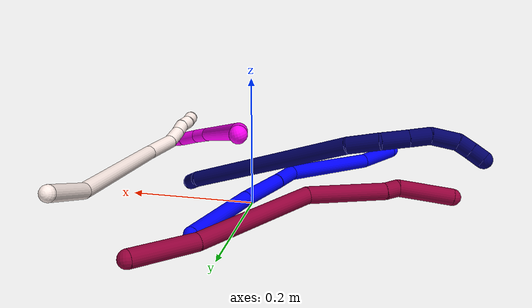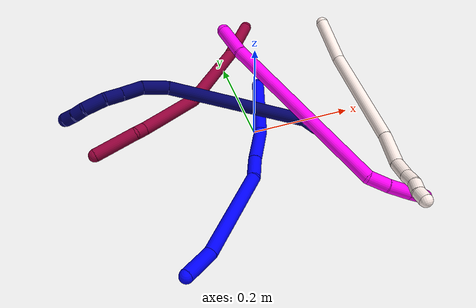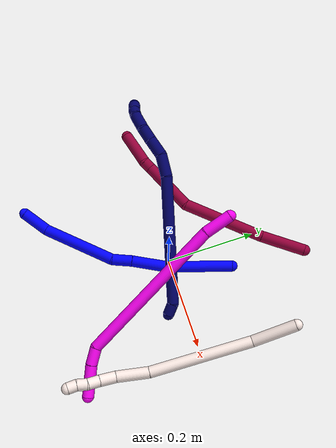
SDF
<sdf version="1.7">
 <world name="default">
  <model name="photoneo_s_sensor">
   <static>1</static>
   <pose>0 0 2 1.57079 1.57079 3.14159</pose>
   <link name="link">
    <inertial><mass>0.1</mass></inertial>
    <sensor name="sensor" type="depth">
     <update_rate>30</update_rate>
     <camera>
      <horizontal_fov>1.22</horizontal_fov>
      <image><width>1920</width><height>1200</height><format>B8G8R8</format></image>
      <clip><near>0.1</near><far>4</far></clip>
      <depth_camera><output>points</output></depth_camera>
     </camera>
     <plugin name="camera_plugin" filename="libgazebo_ros_depth_camera.so">
      <baseline>0.2</baseline>
      <alwaysOn>1</alwaysOn>
      <updateRate>0.0</updateRate>
      <cameraName>camera_ir</cameraName>
      <imageTopicName>/camera/color/image_raw</imageTopicName>
      <cameraInfoTopicName>/camera/color/camera_info</cameraInfoTopicName>
      <depthImageTopicName>/camera/depth/image_raw</depthImageTopicName>
      <depthImageCameraInfoTopicName>/camera/depth/camera_info</depthImageCameraInfoTopicName>
      <pointCloudTopicName>/camera/depth/points</pointCloudTopicName>
      <frameName>fr_optical</frameName>
      <pointCloudCutoff>0.1</pointCloudCutoff>
      <pointCloudCutoffMax>2.0</pointCloudCutoffMax>
      <distortionK1>0</distortionK1>
      <distortionK2>0</distortionK2>
      <distortionK3>0</distortionK3>
      <distortionT1>0</distortionT1>
      <distortionT2>0</distortionT2>
      <CxPrime>0</CxPrime>
      <Cx>0</Cx>
      <Cy>0</Cy>
      <focalLength>0</focalLength>
      <hackBaseline>0</hackBaseline>
     </plugin>
    </sensor>
   </link>
  </model>
  <model name="bin">
   <static>1</static>
   <link name="bottom">
    <collision name="collision-bottom">
     <pose>0 0 -0.01 0 -0 0</pose>
     <geometry><box><size>0.8 0.6 0.02</size></box></geometry>
     <surface>
      <friction><ode><mu>100</mu><mu2>100</mu2></ode></friction>
      <contact><collide_bitmask>65535</collide_bitmask></contact>
     </surface>
    </collision>
   </link>
   <link name="west_wall">
    <collision name="collision-west_wall">
     <pose>-0.41 0 0.1 0 -0 0</pose>
     <geometry><box><size>0.02 0.6 0.2</size></box></geometry>
     <surface>
      <friction><ode><mu>100</mu><mu2>100</mu2></ode></friction>
      <contact><collide_bitmask>65535</collide_bitmask></contact>
     </surface>
    </collision>
   </link>
   <link name="east_wall">
    <collision name="collision-east_wall">
     <pose>0.41 0 0.1 0 -0 0</pose>
     <geometry><box><size>0.02 0.6 0.2</size></box></geometry>
     <surface>
      <friction><ode><mu>100</mu><mu2>100</mu2></ode></friction>
      <contact><collide_bitmask>65535</collide_bitmask></contact>
     </surface>
    </collision>
   </link>
   <link name="south_wall">
    <collision name="collision-south_wall">
     <pose>0 -0.31 0.1 0 -0 0</pose>
     <geometry><box><size>0.8 0.02 0.2</size></box></geometry>
     <surface>
      <friction><ode><mu>100</mu><mu2>100</mu2></ode></friction>
      <contact><collide_bitmask>65535</collide_bitmask></contact>
     </surface>
    </collision>
   </link>
   <link name="north_wall">
    <collision name="collision-north_wall">
     <pose>0 0.31 0.1 0 -0 0</pose>
     <geometry><box><size>0.8 0.02 0.2</size></box></geometry>
     <surface>
      <friction><ode><mu>100</mu><mu2>100</mu2></ode></friction>
      <contact><collide_bitmask>65535</collide_bitmask></contact>
     </surface>
    </collision>
   </link>
  </model>
  <model name="1">
   <static>0</static>
   <link name="1">
    <collision name="collision-cylinder-e_1_1_4">
     <pose>-0.0206 -0.069524 0.003262 1.52391 -0.28776 -0.274745</pose>
     <geometry><cylinder><radius>0.0125</radius><length>0.145169</length></cylinder></geometry>
     <surface>
      <friction><ode><mu>1.16</mu><mu2>1.16</mu2><slip1>0</slip1><slip2>0</slip2></ode></friction>
      <contact><ode><kp>1e+06</kp><kd>1</kd><max_vel>0</max_vel><min_depth>0.001</min_depth></ode></contact>
     </surface>
    </collision>
    <visual name="visual-cylinder-e_1_1_4">
     <pose>-0.0206 -0.069524 0.003262 1.52391 -0.28776 -0.274745</pose>
     <geometry><cylinder><radius>0.0125</radius><length>0.145169</length></cylinder></geometry>
     <material><ambient>0 0 1 1</ambient></material>
    </visual>
    <collision name="collision-cylinder-e_2_4_5">
     <pose>-0.059053 -0.174925 0.009896 1.47709 -0.459981 -0.420033</pose>
     <geometry><cylinder><radius>0.0125</radius><length>0.080432</length></cylinder></geometry>
     <surface>
      <friction><ode><mu>1.16</mu><mu2>1.16</mu2><slip1>0</slip1><slip2>0</slip2></ode></friction>
      <contact><ode><kp>1e+06</kp><kd>1</kd><max_vel>0</max_vel><min_depth>0.001</min_depth></ode></contact>
     </surface>
    </collision>
    <visual name="visual-cylinder-e_2_4_5">
     <pose>-0.059053 -0.174925 0.009896 1.47709 -0.459981 -0.420033</pose>
     <geometry><cylinder><radius>0.0125</radius><length>0.080432</length></cylinder></geometry>
     <material><ambient>0 0 1 1</ambient></material>
    </visual>
    <collision name="collision-cylinder-e_3_5_6">
     <pose>-0.085 -0.231479 0.014678 1.50268 -0.372326 -0.348301</pose>
     <geometry><cylinder><radius>0.0125</radius><length>0.044497</length></cylinder></geometry>
     <surface>
      <friction><ode><mu>1.16</mu><mu2>1.16</mu2><slip1>0</slip1><slip2>0</slip2></ode></friction>
      <contact><ode><kp>1e+06</kp><kd>1</kd><max_vel>0</max_vel><min_depth>0.001</min_depth></ode></contact>
     </surface>
    </collision>
    <visual name="visual-cylinder-e_3_5_6">
     <pose>-0.085 -0.231479 0.014678 1.50268 -0.372326 -0.348301</pose>
     <geometry><cylinder><radius>0.0125</radius><length>0.044497</length></cylinder></geometry>
     <material><ambient>0 0 1 1</ambient></material>
    </visual>
    <collision name="collision-cylinder-e_4_6_7">
     <pose>-0.149591 -0.31415 0.00971 1.67333 -0.736419 -0.808041</pose>
     <geometry><cylinder><radius>0.0125</radius><length>0.16824</length></cylinder></geometry>
     <surface>
      <friction><ode><mu>1.16</mu><mu2>1.16</mu2><slip1>0</slip1><slip2>0</slip2></ode></friction>
      <contact><ode><kp>1e+06</kp><kd>1</kd><max_vel>0</max_vel><min_depth>0.001</min_depth></ode></contact>
     </surface>
    </collision>
    <visual name="visual-cylinder-e_4_6_7">
     <pose>-0.149591 -0.31415 0.00971 1.67333 -0.736419 -0.808041</pose>
     <geometry><cylinder><radius>0.0125</radius><length>0.16824</length></cylinder></geometry>
     <material><ambient>0 0 1 1</ambient></material>
    </visual>
    <collision name="collision-cylinder-e_5_7_2">
     <pose>-0.230491 -0.394242 0.00859 1.28795 -0.913177 -0.706594</pose>
     <geometry><cylinder><radius>0.0125</radius><length>0.061663</length></cylinder></geometry>
     <surface>
      <friction><ode><mu>1.16</mu><mu2>1.16</mu2><slip1>0</slip1><slip2>0</slip2></ode></friction>
      <contact><ode><kp>1e+06</kp><kd>1</kd><max_vel>0</max_vel><min_depth>0.001</min_depth></ode></contact>
     </surface>
    </collision>
    <visual name="visual-cylinder-e_5_7_2">
     <pose>-0.230491 -0.394242 0.00859 1.28795 -0.913177 -0.706594</pose>
     <geometry><cylinder><radius>0.0125</radius><length>0.061663</length></cylinder></geometry>
     <material><ambient>0 0 1 1</ambient></material>
    </visual>
    <collision name="collision-sphere-2">
     <pose>-0.254892 -0.412338 0.013849 0 -0 0</pose>
     <geometry><sphere><radius>0.0125</radius></sphere></geometry>
     <surface>
      <friction><ode><mu>1.16</mu><mu2>1.16</mu2><slip1>0</slip1><slip2>0</slip2></ode></friction>
      <contact><ode><kp>1e+06</kp><kd>1</kd><max_vel>0</max_vel><min_depth>0.001</min_depth></ode></contact>
     </surface>
    </collision>
    <visual name="visual-sphere-2">
     <pose>-0.254892 -0.412338 0.013849 0 -0 0</pose>
     <geometry><sphere><radius>0.0125</radius></sphere></geometry>
     <material><ambient>0 0 1 1</ambient></material>
    </visual>
    <collision name="collision-sphere-7">
     <pose>-0.206089 -0.376145 0.00333 0 -0 0</pose>
     <geometry><sphere><radius>0.0125</radius></sphere></geometry>
     <surface>
      <friction><ode><mu>1.16</mu><mu2>1.16</mu2><slip1>0</slip1><slip2>0</slip2></ode></friction>
      <contact><ode><kp>1e+06</kp><kd>1</kd><max_vel>0</max_vel><min_depth>0.001</min_depth></ode></contact>
     </surface>
    </collision>
    <visual name="visual-sphere-7">
     <pose>-0.206089 -0.376145 0.00333 0 -0 0</pose>
     <geometry><sphere><radius>0.0125</radius></sphere></geometry>
     <material><ambient>0 0 1 1</ambient></material>
    </visual>
    <collision name="collision-sphere-6">
     <pose>-0.093093 -0.252155 0.016089 0 -0 0</pose>
     <geometry><sphere><radius>0.0125</radius></sphere></geometry>
     <surface>
      <friction><ode><mu>1.16</mu><mu2>1.16</mu2><slip1>0</slip1><slip2>0</slip2></ode></friction>
      <contact><ode><kp>1e+06</kp><kd>1</kd><max_vel>0</max_vel><min_depth>0.001</min_depth></ode></contact>
     </surface>
    </collision>
    <visual name="visual-sphere-6">
     <pose>-0.093093 -0.252155 0.016089 0 -0 0</pose>
     <geometry><sphere><radius>0.0125</radius></sphere></geometry>
     <material><ambient>0 0 1 1</ambient></material>
    </visual>
    <collision name="collision-sphere-5">
     <pose>-0.076906 -0.210803 0.013268 0 -0 0</pose>
     <geometry><sphere><radius>0.0125</radius></sphere></geometry>
     <surface>
      <friction><ode><mu>1.16</mu><mu2>1.16</mu2><slip1>0</slip1><slip2>0</slip2></ode></friction>
      <contact><ode><kp>1e+06</kp><kd>1</kd><max_vel>0</max_vel><min_depth>0.001</min_depth></ode></contact>
     </surface>
    </collision>
    <visual name="visual-sphere-5">
     <pose>-0.076906 -0.210803 0.013268 0 -0 0</pose>
     <geometry><sphere><radius>0.0125</radius></sphere></geometry>
     <material><ambient>0 0 1 1</ambient></material>
    </visual>
    <collision name="collision-sphere-1">
     <geometry><sphere><radius>0.0125</radius></sphere></geometry>
     <surface>
      <friction><ode><mu>1.16</mu><mu2>1.16</mu2><slip1>0</slip1><slip2>0</slip2></ode></friction>
      <contact><ode><kp>1e+06</kp><kd>1</kd><max_vel>0</max_vel><min_depth>0.001</min_depth></ode></contact>
     </surface>
    </collision>
    <visual name="visual-sphere-1">
     <geometry><sphere><radius>0.0125</radius></sphere></geometry>
     <material><ambient>0 0 1 1</ambient></material>
    </visual>
    <collision name="collision-sphere-4">
     <pose>-0.0412 -0.139047 0.006524 0 -0 0</pose>
     <geometry><sphere><radius>0.0125</radius></sphere></geometry>
     <surface>
      <friction><ode><mu>1.16</mu><mu2>1.16</mu2><slip1>0</slip1><slip2>0</slip2></ode></friction>
      <contact><ode><kp>1e+06</kp><kd>1</kd><max_vel>0</max_vel><min_depth>0.001</min_depth></ode></contact>
     </surface>
    </collision>
    <visual name="visual-sphere-4">
     <pose>-0.0412 -0.139047 0.006524 0 -0 0</pose>
     <geometry><sphere><radius>0.0125</radius></sphere></geometry>
     <material><ambient>0 0 1 1</ambient></material>
    </visual>
    <inertial>
     <pose>-0.101804 -0.223249 0.008172 0 -0 0</pose>
     <mass>0.5</mass>
     <inertia>
      <ixx>0.000171</ixx>
      <ixy>0</ixy>
      <ixz>0</ixz>
      <iyy>-0.000117</iyy>
      <iyz>0</iyz>
      <izz>0.000997</izz>
     </inertia>
    </inertial>
   </link>
   <pose>0.055939 0.132226 0.001002 0.049211 0.075123 -0.020394</pose>
  </model>
  <model name="7">
   <static>0</static>
   <link name="7">
    <collision name="collision-cylinder-e_1_1_4">
     <pose>0.001054 0.002299 -0.013148 -2.96849 0.078828 -0.853167</pose>
     <geometry><cylinder><radius>0.0125</radius><length>0.026777</length></cylinder></geometry>
     <surface>
      <friction><ode><mu>1.16</mu><mu2>1.16</mu2><slip1>0</slip1><slip2>0</slip2></ode></friction>
      <contact><ode><kp>1e+06</kp><kd>1</kd><max_vel>0</max_vel><min_depth>0.001</min_depth></ode></contact>
     </surface>
    </collision>
    <visual name="visual-cylinder-e_1_1_4">
     <pose>0.001054 0.002299 -0.013148 -2.96849 0.078828 -0.853167</pose>
     <geometry><cylinder><radius>0.0125</radius><length>0.026777</length></cylinder></geometry>
     <material><ambient>0.003922 0 0.403922 1</ambient></material>
    </visual>
    <collision name="collision-cylinder-e_2_4_5">
     <pose>-0.040552 0.002821 -0.156525 3.12795 -0.316535 -3.05619</pose>
     <geometry><cylinder><radius>0.0125</radius><length>0.2741</length></cylinder></geometry>
     <surface>
      <friction><ode><mu>1.16</mu><mu2>1.16</mu2><slip1>0</slip1><slip2>0</slip2></ode></friction>
      <contact><ode><kp>1e+06</kp><kd>1</kd><max_vel>0</max_vel><min_depth>0.001</min_depth></ode></contact>
     </surface>
    </collision>
    <visual name="visual-cylinder-e_2_4_5">
     <pose>-0.040552 0.002821 -0.156525 3.12795 -0.316535 -3.05619</pose>
     <geometry><cylinder><radius>0.0125</radius><length>0.2741</length></cylinder></geometry>
     <material><ambient>0.003922 0 0.403922 1</ambient></material>
    </visual>
    <collision name="collision-cylinder-e_3_5_6">
     <pose>-0.094314 -0.002848 -0.307358 2.95487 -0.486922 -2.42061</pose>
     <geometry><cylinder><radius>0.0125</radius><length>0.047453</length></cylinder></geometry>
     <surface>
      <friction><ode><mu>1.16</mu><mu2>1.16</mu2><slip1>0</slip1><slip2>0</slip2></ode></friction>
      <contact><ode><kp>1e+06</kp><kd>1</kd><max_vel>0</max_vel><min_depth>0.001</min_depth></ode></contact>
     </surface>
    </collision>
    <visual name="visual-cylinder-e_3_5_6">
     <pose>-0.094314 -0.002848 -0.307358 2.95487 -0.486922 -2.42061</pose>
     <geometry><cylinder><radius>0.0125</radius><length>0.047453</length></cylinder></geometry>
     <material><ambient>0.003922 0 0.403922 1</ambient></material>
    </visual>
    <collision name="collision-cylinder-e_4_6_7">
     <pose>-0.119775 -0.012228 -0.34054 2.73018 -0.808079 -2.23357</pose>
     <geometry><cylinder><radius>0.0125</radius><length>0.039722</length></cylinder></geometry>
     <surface>
      <friction><ode><mu>1.16</mu><mu2>1.16</mu2><slip1>0</slip1><slip2>0</slip2></ode></friction>
      <contact><ode><kp>1e+06</kp><kd>1</kd><max_vel>0</max_vel><min_depth>0.001</min_depth></ode></contact>
     </surface>
    </collision>
    <visual name="visual-cylinder-e_4_6_7">
     <pose>-0.119775 -0.012228 -0.34054 2.73018 -0.808079 -2.23357</pose>
     <geometry><cylinder><radius>0.0125</radius><length>0.039722</length></cylinder></geometry>
     <material><ambient>0.003922 0 0.403922 1</ambient></material>
    </visual>
    <collision name="collision-cylinder-e_5_7_8">
     <pose>-0.145184 -0.021703 -0.363244 2.76641 -0.793001 -2.29026</pose>
     <geometry><cylinder><radius>0.0125</radius><length>0.031022</length></cylinder></geometry>
     <surface>
      <friction><ode><mu>1.16</mu><mu2>1.16</mu2><slip1>0</slip1><slip2>0</slip2></ode></friction>
      <contact><ode><kp>1e+06</kp><kd>1</kd><max_vel>0</max_vel><min_depth>0.001</min_depth></ode></contact>
     </surface>
    </collision>
    <visual name="visual-cylinder-e_5_7_8">
     <pose>-0.145184 -0.021703 -0.363244 2.76641 -0.793001 -2.29026</pose>
     <geometry><cylinder><radius>0.0125</radius><length>0.031022</length></cylinder></geometry>
     <material><ambient>0.003922 0 0.403922 1</ambient></material>
    </visual>
    <collision name="collision-cylinder-e_6_8_9">
     <pose>-0.16665 -0.03632 -0.385489 2.42161 -0.573653 -1.32939</pose>
     <geometry><cylinder><radius>0.0125</radius><length>0.03838</length></cylinder></geometry>
     <surface>
      <friction><ode><mu>1.16</mu><mu2>1.16</mu2><slip1>0</slip1><slip2>0</slip2></ode></friction>
      <contact><ode><kp>1e+06</kp><kd>1</kd><max_vel>0</max_vel><min_depth>0.001</min_depth></ode></contact>
     </surface>
    </collision>
    <visual name="visual-cylinder-e_6_8_9">
     <pose>-0.16665 -0.03632 -0.385489 2.42161 -0.573653 -1.32939</pose>
     <geometry><cylinder><radius>0.0125</radius><length>0.03838</length></cylinder></geometry>
     <material><ambient>0.003922 0 0.403922 1</ambient></material>
    </visual>
    <collision name="collision-cylinder-e_7_9_10">
     <pose>-0.179731 -0.055395 -0.403601 2.18799 -0.252021 -0.480996</pose>
     <geometry><cylinder><radius>0.0125</radius><length>0.021393</length></cylinder></geometry>
     <surface>
      <friction><ode><mu>1.16</mu><mu2>1.16</mu2><slip1>0</slip1><slip2>0</slip2></ode></friction>
      <contact><ode><kp>1e+06</kp><kd>1</kd><max_vel>0</max_vel><min_depth>0.001</min_depth></ode></contact>
     </surface>
    </collision>
    <visual name="visual-cylinder-e_7_9_10">
     <pose>-0.179731 -0.055395 -0.403601 2.18799 -0.252021 -0.480996</pose>
     <geometry><cylinder><radius>0.0125</radius><length>0.021393</length></cylinder></geometry>
     <material><ambient>0.003922 0 0.403922 1</ambient></material>
    </visual>
    <collision name="collision-cylinder-e_8_10_2">
     <pose>-0.183385 -0.071984 -0.416275 2.25777 -0.09337 -0.196857</pose>
     <geometry><cylinder><radius>0.0125</radius><length>0.021153</length></cylinder></geometry>
     <surface>
      <friction><ode><mu>1.16</mu><mu2>1.16</mu2><slip1>0</slip1><slip2>0</slip2></ode></friction>
      <contact><ode><kp>1e+06</kp><kd>1</kd><max_vel>0</max_vel><min_depth>0.001</min_depth></ode></contact>
     </surface>
    </collision>
    <visual name="visual-cylinder-e_8_10_2">
     <pose>-0.183385 -0.071984 -0.416275 2.25777 -0.09337 -0.196857</pose>
     <geometry><cylinder><radius>0.0125</radius><length>0.021153</length></cylinder></geometry>
     <material><ambient>0.003922 0 0.403922 1</ambient></material>
    </visual>
    <collision name="collision-sphere-2">
     <pose>-0.184371 -0.080125 -0.422953 0 -0 0</pose>
     <geometry><sphere><radius>0.0125</radius></sphere></geometry>
     <surface>
      <friction><ode><mu>1.16</mu><mu2>1.16</mu2><slip1>0</slip1><slip2>0</slip2></ode></friction>
      <contact><ode><kp>1e+06</kp><kd>1</kd><max_vel>0</max_vel><min_depth>0.001</min_depth></ode></contact>
     </surface>
    </collision>
    <visual name="visual-sphere-2">
     <pose>-0.184371 -0.080125 -0.422953 0 -0 0</pose>
     <geometry><sphere><radius>0.0125</radius></sphere></geometry>
     <material><ambient>0.003922 0 0.403922 1</ambient></material>
    </visual>
    <collision name="collision-sphere-10">
     <pose>-0.182399 -0.063842 -0.409596 0 -0 0</pose>
     <geometry><sphere><radius>0.0125</radius></sphere></geometry>
     <surface>
      <friction><ode><mu>1.16</mu><mu2>1.16</mu2><slip1>0</slip1><slip2>0</slip2></ode></friction>
      <contact><ode><kp>1e+06</kp><kd>1</kd><max_vel>0</max_vel><min_depth>0.001</min_depth></ode></contact>
     </surface>
    </collision>
    <visual name="visual-sphere-10">
     <pose>-0.182399 -0.063842 -0.409596 0 -0 0</pose>
     <geometry><sphere><radius>0.0125</radius></sphere></geometry>
     <material><ambient>0.003922 0 0.403922 1</ambient></material>
    </visual>
    <collision name="collision-sphere-9">
     <pose>-0.177064 -0.046947 -0.397606 0 -0 0</pose>
     <geometry><sphere><radius>0.0125</radius></sphere></geometry>
     <surface>
      <friction><ode><mu>1.16</mu><mu2>1.16</mu2><slip1>0</slip1><slip2>0</slip2></ode></friction>
      <contact><ode><kp>1e+06</kp><kd>1</kd><max_vel>0</max_vel><min_depth>0.001</min_depth></ode></contact>
     </surface>
    </collision>
    <visual name="visual-sphere-9">
     <pose>-0.177064 -0.046947 -0.397606 0 -0 0</pose>
     <geometry><sphere><radius>0.0125</radius></sphere></geometry>
     <material><ambient>0.003922 0 0.403922 1</ambient></material>
    </visual>
    <collision name="collision-sphere-4">
     <pose>0.002109 0.004598 -0.026295 0 -0 0</pose>
     <geometry><sphere><radius>0.0125</radius></sphere></geometry>
     <surface>
      <friction><ode><mu>1.16</mu><mu2>1.16</mu2><slip1>0</slip1><slip2>0</slip2></ode></friction>
      <contact><ode><kp>1e+06</kp><kd>1</kd><max_vel>0</max_vel><min_depth>0.001</min_depth></ode></contact>
     </surface>
    </collision>
    <visual name="visual-sphere-4">
     <pose>0.002109 0.004598 -0.026295 0 -0 0</pose>
     <geometry><sphere><radius>0.0125</radius></sphere></geometry>
     <material><ambient>0.003922 0 0.403922 1</ambient></material>
    </visual>
    <collision name="collision-sphere-1">
     <geometry><sphere><radius>0.0125</radius></sphere></geometry>
     <surface>
      <friction><ode><mu>1.16</mu><mu2>1.16</mu2><slip1>0</slip1><slip2>0</slip2></ode></friction>
      <contact><ode><kp>1e+06</kp><kd>1</kd><max_vel>0</max_vel><min_depth>0.001</min_depth></ode></contact>
     </surface>
    </collision>
    <visual name="visual-sphere-1">
     <geometry><sphere><radius>0.0125</radius></sphere></geometry>
     <material><ambient>0.003922 0 0.403922 1</ambient></material>
    </visual>
    <collision name="collision-sphere-8">
     <pose>-0.156235 -0.025692 -0.373371 0 -0 0</pose>
     <geometry><sphere><radius>0.0125</radius></sphere></geometry>
     <surface>
      <friction><ode><mu>1.16</mu><mu2>1.16</mu2><slip1>0</slip1><slip2>0</slip2></ode></friction>
      <contact><ode><kp>1e+06</kp><kd>1</kd><max_vel>0</max_vel><min_depth>0.001</min_depth></ode></contact>
     </surface>
    </collision>
    <visual name="visual-sphere-8">
     <pose>-0.156235 -0.025692 -0.373371 0 -0 0</pose>
     <geometry><sphere><radius>0.0125</radius></sphere></geometry>
     <material><ambient>0.003922 0 0.403922 1</ambient></material>
    </visual>
    <collision name="collision-sphere-5">
     <pose>-0.083212 0.001045 -0.286754 0 -0 0</pose>
     <geometry><sphere><radius>0.0125</radius></sphere></geometry>
     <surface>
      <friction><ode><mu>1.16</mu><mu2>1.16</mu2><slip1>0</slip1><slip2>0</slip2></ode></friction>
      <contact><ode><kp>1e+06</kp><kd>1</kd><max_vel>0</max_vel><min_depth>0.001</min_depth></ode></contact>
     </surface>
    </collision>
    <visual name="visual-sphere-5">
     <pose>-0.083212 0.001045 -0.286754 0 -0 0</pose>
     <geometry><sphere><radius>0.0125</radius></sphere></geometry>
     <material><ambient>0.003922 0 0.403922 1</ambient></material>
    </visual>
    <collision name="collision-sphere-6">
     <pose>-0.105416 -0.00674 -0.327963 0 -0 0</pose>
     <geometry><sphere><radius>0.0125</radius></sphere></geometry>
     <surface>
      <friction><ode><mu>1.16</mu><mu2>1.16</mu2><slip1>0</slip1><slip2>0</slip2></ode></friction>
      <contact><ode><kp>1e+06</kp><kd>1</kd><max_vel>0</max_vel><min_depth>0.001</min_depth></ode></contact>
     </surface>
    </collision>
    <visual name="visual-sphere-6">
     <pose>-0.105416 -0.00674 -0.327963 0 -0 0</pose>
     <geometry><sphere><radius>0.0125</radius></sphere></geometry>
     <material><ambient>0.003922 0 0.403922 1</ambient></material>
    </visual>
    <collision name="collision-sphere-7">
     <pose>-0.134133 -0.017715 -0.353117 0 -0 0</pose>
     <geometry><sphere><radius>0.0125</radius></sphere></geometry>
     <surface>
      <friction><ode><mu>1.16</mu><mu2>1.16</mu2><slip1>0</slip1><slip2>0</slip2></ode></friction>
      <contact><ode><kp>1e+06</kp><kd>1</kd><max_vel>0</max_vel><min_depth>0.001</min_depth></ode></contact>
     </surface>
    </collision>
    <visual name="visual-sphere-7">
     <pose>-0.134133 -0.017715 -0.353117 0 -0 0</pose>
     <geometry><sphere><radius>0.0125</radius></sphere></geometry>
     <material><ambient>0.003922 0 0.403922 1</ambient></material>
    </visual>
    <inertial>
     <pose>-0.077888 -0.009122 -0.229741 0 -0 0</pose>
     <mass>0.5</mass>
     <inertia>
      <ixx>-0.001815</ixx>
      <ixy>0</ixy>
      <ixz>0</ixz>
      <iyy>0.001569</iyy>
      <iyz>0</iyz>
      <izz>0.000553</izz>
     </inertia>
    </inertial>
   </link>
   <pose>0.115125 -0.038669 0.012548 1.89639 0.206408 1.0356</pose>
  </model>
  <model name="8">
   <static>0</static>
   <link name="8">
    <collision name="collision-cylinder-e_1_1_4">
     <pose>-0.042861 -0.021378 -0.009576 1.99195 -1.07062 -1.48266</pose>
     <geometry><cylinder><radius>0.0125</radius><length>0.097688</length></cylinder></geometry>
     <surface>
      <friction><ode><mu>1.16</mu><mu2>1.16</mu2><slip1>0</slip1><slip2>0</slip2></ode></friction>
      <contact><ode><kp>1e+06</kp><kd>1</kd><max_vel>0</max_vel><min_depth>0.001</min_depth></ode></contact>
     </surface>
    </collision>
    <visual name="visual-cylinder-e_1_1_4">
     <pose>-0.042861 -0.021378 -0.009576 1.99195 -1.07062 -1.48266</pose>
     <geometry><cylinder><radius>0.0125</radius><length>0.097688</length></cylinder></geometry>
     <material><ambient>0.584314 0 0.227451 1</ambient></material>
    </visual>
    <collision name="collision-cylinder-e_2_4_5">
     <pose>-0.157303 -0.090701 -0.049688 2.13789 -0.899664 -1.44328</pose>
     <geometry><cylinder><radius>0.0125</radius><length>0.182813</length></cylinder></geometry>
     <surface>
      <friction><ode><mu>1.16</mu><mu2>1.16</mu2><slip1>0</slip1><slip2>0</slip2></ode></friction>
      <contact><ode><kp>1e+06</kp><kd>1</kd><max_vel>0</max_vel><min_depth>0.001</min_depth></ode></contact>
     </surface>
    </collision>
    <visual name="visual-cylinder-e_2_4_5">
     <pose>-0.157303 -0.090701 -0.049688 2.13789 -0.899664 -1.44328</pose>
     <geometry><cylinder><radius>0.0125</radius><length>0.182813</length></cylinder></geometry>
     <material><ambient>0.584314 0 0.227451 1</ambient></material>
    </visual>
    <collision name="collision-cylinder-e_3_5_6">
     <pose>-0.265011 -0.184715 -0.078901 1.5421 -0.66481 -0.647306</pose>
     <geometry><cylinder><radius>0.0125</radius><length>0.117117</length></cylinder></geometry>
     <surface>
      <friction><ode><mu>1.16</mu><mu2>1.16</mu2><slip1>0</slip1><slip2>0</slip2></ode></friction>
      <contact><ode><kp>1e+06</kp><kd>1</kd><max_vel>0</max_vel><min_depth>0.001</min_depth></ode></contact>
     </surface>
    </collision>
    <visual name="visual-cylinder-e_3_5_6">
     <pose>-0.265011 -0.184715 -0.078901 1.5421 -0.66481 -0.647306</pose>
     <geometry><cylinder><radius>0.0125</radius><length>0.117117</length></cylinder></geometry>
     <material><ambient>0.584314 0 0.227451 1</ambient></material>
    </visual>
    <collision name="collision-cylinder-e_4_6_7">
     <pose>-0.306962 -0.238881 -0.079229 1.77183 -0.61405 -0.740544</pose>
     <geometry><cylinder><radius>0.0125</radius><length>0.020223</length></cylinder></geometry>
     <surface>
      <friction><ode><mu>1.16</mu><mu2>1.16</mu2><slip1>0</slip1><slip2>0</slip2></ode></friction>
      <contact><ode><kp>1e+06</kp><kd>1</kd><max_vel>0</max_vel><min_depth>0.001</min_depth></ode></contact>
     </surface>
    </collision>
    <visual name="visual-cylinder-e_4_6_7">
     <pose>-0.306962 -0.238881 -0.079229 1.77183 -0.61405 -0.740544</pose>
     <geometry><cylinder><radius>0.0125</radius><length>0.020223</length></cylinder></geometry>
     <material><ambient>0.584314 0 0.227451 1</ambient></material>
    </visual>
    <collision name="collision-cylinder-e_5_7_2">
     <pose>-0.335181 -0.279818 -0.070503 1.26475 -0.576522 -0.427903</pose>
     <geometry><cylinder><radius>0.0125</radius><length>0.082159</length></cylinder></geometry>
     <surface>
      <friction><ode><mu>1.16</mu><mu2>1.16</mu2><slip1>0</slip1><slip2>0</slip2></ode></friction>
      <contact><ode><kp>1e+06</kp><kd>1</kd><max_vel>0</max_vel><min_depth>0.001</min_depth></ode></contact>
     </surface>
    </collision>
    <visual name="visual-cylinder-e_5_7_2">
     <pose>-0.335181 -0.279818 -0.070503 1.26475 -0.576522 -0.427903</pose>
     <geometry><cylinder><radius>0.0125</radius><length>0.082159</length></cylinder></geometry>
     <material><ambient>0.584314 0 0.227451 1</ambient></material>
    </visual>
    <collision name="collision-sphere-2">
     <pose>-0.357574 -0.312657 -0.060126 0 -0 0</pose>
     <geometry><sphere><radius>0.0125</radius></sphere></geometry>
     <surface>
      <friction><ode><mu>1.16</mu><mu2>1.16</mu2><slip1>0</slip1><slip2>0</slip2></ode></friction>
      <contact><ode><kp>1e+06</kp><kd>1</kd><max_vel>0</max_vel><min_depth>0.001</min_depth></ode></contact>
     </surface>
    </collision>
    <visual name="visual-sphere-2">
     <pose>-0.357574 -0.312657 -0.060126 0 -0 0</pose>
     <geometry><sphere><radius>0.0125</radius></sphere></geometry>
     <material><ambient>0.584314 0 0.227451 1</ambient></material>
    </visual>
    <collision name="collision-sphere-7">
     <pose>-0.312788 -0.246979 -0.080879 0 -0 0</pose>
     <geometry><sphere><radius>0.0125</radius></sphere></geometry>
     <surface>
      <friction><ode><mu>1.16</mu><mu2>1.16</mu2><slip1>0</slip1><slip2>0</slip2></ode></friction>
      <contact><ode><kp>1e+06</kp><kd>1</kd><max_vel>0</max_vel><min_depth>0.001</min_depth></ode></contact>
     </surface>
    </collision>
    <visual name="visual-sphere-7">
     <pose>-0.312788 -0.246979 -0.080879 0 -0 0</pose>
     <geometry><sphere><radius>0.0125</radius></sphere></geometry>
     <material><ambient>0.584314 0 0.227451 1</ambient></material>
    </visual>
    <collision name="collision-sphere-6">
     <pose>-0.301136 -0.230783 -0.077579 0 -0 0</pose>
     <geometry><sphere><radius>0.0125</radius></sphere></geometry>
     <surface>
      <friction><ode><mu>1.16</mu><mu2>1.16</mu2><slip1>0</slip1><slip2>0</slip2></ode></friction>
      <contact><ode><kp>1e+06</kp><kd>1</kd><max_vel>0</max_vel><min_depth>0.001</min_depth></ode></contact>
     </surface>
    </collision>
    <visual name="visual-sphere-6">
     <pose>-0.301136 -0.230783 -0.077579 0 -0 0</pose>
     <geometry><sphere><radius>0.0125</radius></sphere></geometry>
     <material><ambient>0.584314 0 0.227451 1</ambient></material>
    </visual>
    <collision name="collision-sphere-5">
     <pose>-0.228886 -0.138646 -0.080223 0 -0 0</pose>
     <geometry><sphere><radius>0.0125</radius></sphere></geometry>
     <surface>
      <friction><ode><mu>1.16</mu><mu2>1.16</mu2><slip1>0</slip1><slip2>0</slip2></ode></friction>
      <contact><ode><kp>1e+06</kp><kd>1</kd><max_vel>0</max_vel><min_depth>0.001</min_depth></ode></contact>
     </surface>
    </collision>
    <visual name="visual-sphere-5">
     <pose>-0.228886 -0.138646 -0.080223 0 -0 0</pose>
     <geometry><sphere><radius>0.0125</radius></sphere></geometry>
     <material><ambient>0.584314 0 0.227451 1</ambient></material>
    </visual>
    <collision name="collision-sphere-1">
     <geometry><sphere><radius>0.0125</radius></sphere></geometry>
     <surface>
      <friction><ode><mu>1.16</mu><mu2>1.16</mu2><slip1>0</slip1><slip2>0</slip2></ode></friction>
      <contact><ode><kp>1e+06</kp><kd>1</kd><max_vel>0</max_vel><min_depth>0.001</min_depth></ode></contact>
     </surface>
    </collision>
    <visual name="visual-sphere-1">
     <geometry><sphere><radius>0.0125</radius></sphere></geometry>
     <material><ambient>0.584314 0 0.227451 1</ambient></material>
    </visual>
    <collision name="collision-sphere-4">
     <pose>-0.085721 -0.042755 -0.019153 0 -0 0</pose>
     <geometry><sphere><radius>0.0125</radius></sphere></geometry>
     <surface>
      <friction><ode><mu>1.16</mu><mu2>1.16</mu2><slip1>0</slip1><slip2>0</slip2></ode></friction>
      <contact><ode><kp>1e+06</kp><kd>1</kd><max_vel>0</max_vel><min_depth>0.001</min_depth></ode></contact>
     </surface>
    </collision>
    <visual name="visual-sphere-4">
     <pose>-0.085721 -0.042755 -0.019153 0 -0 0</pose>
     <geometry><sphere><radius>0.0125</radius></sphere></geometry>
     <material><ambient>0.584314 0 0.227451 1</ambient></material>
    </visual>
    <inertial>
     <pose>-0.195454 -0.136247 -0.053309 0 -0 0</pose>
     <mass>0.5</mass>
     <inertia>
      <ixx>-0.000299</ixx>
      <ixy>0</ixy>
      <ixz>0</ixz>
      <iyy>-2.1e-05</iyy>
      <iyz>0</iyz>
      <izz>0.00104</izz>
     </inertia>
    </inertial>
   </link>
   <pose>0.080379 0.288049 0.040608 -2.74263 -0.467534 1.22581</pose>
  </model>
  <model name="10">
   <static>0</static>
   <link name="10">
    <collision name="collision-cylinder-e_1_1_4">
     <pose>0.029388 -0.001001 0.005519 0.17949 1.3822 0.148598</pose>
     <geometry><cylinder><radius>0.0125</radius><length>0.059838</length></cylinder></geometry>
     <surface>
      <friction><ode><mu>1.16</mu><mu2>1.16</mu2><slip1>0</slip1><slip2>0</slip2></ode></friction>
      <contact><ode><kp>1e+06</kp><kd>1</kd><max_vel>0</max_vel><min_depth>0.001</min_depth></ode></contact>
     </surface>
    </collision>
    <visual name="visual-cylinder-e_1_1_4">
     <pose>0.029388 -0.001001 0.005519 0.17949 1.3822 0.148598</pose>
     <geometry><cylinder><radius>0.0125</radius><length>0.059838</length></cylinder></geometry>
     <material><ambient>1 0 0.964706 1</ambient></material>
    </visual>
    <collision name="collision-cylinder-e_2_4_5">
     <pose>0.216864 -0.041725 0.044321 0.873376 1.25402 0.652203</pose>
     <geometry><cylinder><radius>0.0125</radius><length>0.332729</length></cylinder></geometry>
     <surface>
      <friction><ode><mu>1.16</mu><mu2>1.16</mu2><slip1>0</slip1><slip2>0</slip2></ode></friction>
      <contact><ode><kp>1e+06</kp><kd>1</kd><max_vel>0</max_vel><min_depth>0.001</min_depth></ode></contact>
     </surface>
    </collision>
    <visual name="visual-cylinder-e_2_4_5">
     <pose>0.216864 -0.041725 0.044321 0.873376 1.25402 0.652203</pose>
     <geometry><cylinder><radius>0.0125</radius><length>0.332729</length></cylinder></geometry>
     <material><ambient>1 0 0.964706 1</ambient></material>
    </visual>
    <collision name="collision-cylinder-e_3_5_6">
     <pose>0.389064 -0.094073 0.079148 1.44912 0.837306 0.750405</pose>
     <geometry><cylinder><radius>0.0125</radius><length>0.037998</length></cylinder></geometry>
     <surface>
      <friction><ode><mu>1.16</mu><mu2>1.16</mu2><slip1>0</slip1><slip2>0</slip2></ode></friction>
      <contact><ode><kp>1e+06</kp><kd>1</kd><max_vel>0</max_vel><min_depth>0.001</min_depth></ode></contact>
     </surface>
    </collision>
    <visual name="visual-cylinder-e_3_5_6">
     <pose>0.389064 -0.094073 0.079148 1.44912 0.837306 0.750405</pose>
     <geometry><cylinder><radius>0.0125</radius><length>0.037998</length></cylinder></geometry>
     <material><ambient>1 0 0.964706 1</ambient></material>
    </visual>
    <collision name="collision-cylinder-e_4_6_7">
     <pose>0.416171 -0.122598 0.082228 1.47448 0.682898 0.624279</pose>
     <geometry><cylinder><radius>0.0125</radius><length>0.041182</length></cylinder></geometry>
     <surface>
      <friction><ode><mu>1.16</mu><mu2>1.16</mu2><slip1>0</slip1><slip2>0</slip2></ode></friction>
      <contact><ode><kp>1e+06</kp><kd>1</kd><max_vel>0</max_vel><min_depth>0.001</min_depth></ode></contact>
     </surface>
    </collision>
    <visual name="visual-cylinder-e_4_6_7">
     <pose>0.416171 -0.122598 0.082228 1.47448 0.682898 0.624279</pose>
     <geometry><cylinder><radius>0.0125</radius><length>0.041182</length></cylinder></geometry>
     <material><ambient>1 0 0.964706 1</ambient></material>
    </visual>
    <collision name="collision-cylinder-e_5_7_2">
     <pose>0.4381 -0.149439 0.083784 1.56905 0.684763 0.683661</pose>
     <geometry><cylinder><radius>0.0125</radius><length>0.028254</length></cylinder></geometry>
     <surface>
      <friction><ode><mu>1.16</mu><mu2>1.16</mu2><slip1>0</slip1><slip2>0</slip2></ode></friction>
      <contact><ode><kp>1e+06</kp><kd>1</kd><max_vel>0</max_vel><min_depth>0.001</min_depth></ode></contact>
     </surface>
    </collision>
    <visual name="visual-cylinder-e_5_7_2">
     <pose>0.4381 -0.149439 0.083784 1.56905 0.684763 0.683661</pose>
     <geometry><cylinder><radius>0.0125</radius><length>0.028254</length></cylinder></geometry>
     <material><ambient>1 0 0.964706 1</ambient></material>
    </visual>
    <collision name="collision-sphere-2">
     <pose>0.447035 -0.160381 0.083803 0 -0 0</pose>
     <geometry><sphere><radius>0.0125</radius></sphere></geometry>
     <surface>
      <friction><ode><mu>1.16</mu><mu2>1.16</mu2><slip1>0</slip1><slip2>0</slip2></ode></friction>
      <contact><ode><kp>1e+06</kp><kd>1</kd><max_vel>0</max_vel><min_depth>0.001</min_depth></ode></contact>
     </surface>
    </collision>
    <visual name="visual-sphere-2">
     <pose>0.447035 -0.160381 0.083803 0 -0 0</pose>
     <geometry><sphere><radius>0.0125</radius></sphere></geometry>
     <material><ambient>1 0 0.964706 1</ambient></material>
    </visual>
    <collision name="collision-sphere-7">
     <pose>0.429164 -0.138497 0.083764 0 -0 0</pose>
     <geometry><sphere><radius>0.0125</radius></sphere></geometry>
     <surface>
      <friction><ode><mu>1.16</mu><mu2>1.16</mu2><slip1>0</slip1><slip2>0</slip2></ode></friction>
      <contact><ode><kp>1e+06</kp><kd>1</kd><max_vel>0</max_vel><min_depth>0.001</min_depth></ode></contact>
     </surface>
    </collision>
    <visual name="visual-sphere-7">
     <pose>0.429164 -0.138497 0.083764 0 -0 0</pose>
     <geometry><sphere><radius>0.0125</radius></sphere></geometry>
     <material><ambient>1 0 0.964706 1</ambient></material>
    </visual>
    <collision name="collision-sphere-6">
     <pose>0.403177 -0.106699 0.080692 0 -0 0</pose>
     <geometry><sphere><radius>0.0125</radius></sphere></geometry>
     <surface>
      <friction><ode><mu>1.16</mu><mu2>1.16</mu2><slip1>0</slip1><slip2>0</slip2></ode></friction>
      <contact><ode><kp>1e+06</kp><kd>1</kd><max_vel>0</max_vel><min_depth>0.001</min_depth></ode></contact>
     </surface>
    </collision>
    <visual name="visual-sphere-6">
     <pose>0.403177 -0.106699 0.080692 0 -0 0</pose>
     <geometry><sphere><radius>0.0125</radius></sphere></geometry>
     <material><ambient>1 0 0.964706 1</ambient></material>
    </visual>
    <collision name="collision-sphere-5">
     <pose>0.37495 -0.081448 0.077604 0 -0 0</pose>
     <geometry><sphere><radius>0.0125</radius></sphere></geometry>
     <surface>
      <friction><ode><mu>1.16</mu><mu2>1.16</mu2><slip1>0</slip1><slip2>0</slip2></ode></friction>
      <contact><ode><kp>1e+06</kp><kd>1</kd><max_vel>0</max_vel><min_depth>0.001</min_depth></ode></contact>
     </surface>
    </collision>
    <visual name="visual-sphere-5">
     <pose>0.37495 -0.081448 0.077604 0 -0 0</pose>
     <geometry><sphere><radius>0.0125</radius></sphere></geometry>
     <material><ambient>1 0 0.964706 1</ambient></material>
    </visual>
    <collision name="collision-sphere-1">
     <geometry><sphere><radius>0.0125</radius></sphere></geometry>
     <surface>
      <friction><ode><mu>1.16</mu><mu2>1.16</mu2><slip1>0</slip1><slip2>0</slip2></ode></friction>
      <contact><ode><kp>1e+06</kp><kd>1</kd><max_vel>0</max_vel><min_depth>0.001</min_depth></ode></contact>
     </surface>
    </collision>
    <visual name="visual-sphere-1">
     <geometry><sphere><radius>0.0125</radius></sphere></geometry>
     <material><ambient>1 0 0.964706 1</ambient></material>
    </visual>
    <collision name="collision-sphere-4">
     <pose>0.058777 -0.002003 0.011038 0 -0 0</pose>
     <geometry><sphere><radius>0.0125</radius></sphere></geometry>
     <surface>
      <friction><ode><mu>1.16</mu><mu2>1.16</mu2><slip1>0</slip1><slip2>0</slip2></ode></friction>
      <contact><ode><kp>1e+06</kp><kd>1</kd><max_vel>0</max_vel><min_depth>0.001</min_depth></ode></contact>
     </surface>
    </collision>
    <visual name="visual-sphere-4">
     <pose>0.058777 -0.002003 0.011038 0 -0 0</pose>
     <geometry><sphere><radius>0.0125</radius></sphere></geometry>
     <material><ambient>1 0 0.964706 1</ambient></material>
    </visual>
    <inertial>
     <pose>0.236431 -0.053578 0.047676 0 -0 0</pose>
     <mass>0.5</mass>
     <inertia>
      <ixx>0.001402</ixx>
      <ixy>0</ixy>
      <ixz>0</ixz>
      <iyy>0.003543</iyy>
      <iyz>0</iyz>
      <izz>-0.002205</izz>
     </inertia>
    </inertial>
   </link>
   <pose>-0.015515 0.136084 0.154433 2.83987 0.032062 -1.29927</pose>
  </model>
  <model name="11">
   <static>0</static>
   <link name="11">
    <collision name="collision-cylinder-e_1_1_4">
     <pose>-0.000102 -0.001261 -0.049393 3.11607 -0.002055 -0.160678</pose>
     <geometry><cylinder><radius>0.0125</radius><length>0.098819</length></cylinder></geometry>
     <surface>
      <friction><ode><mu>1.16</mu><mu2>1.16</mu2><slip1>0</slip1><slip2>0</slip2></ode></friction>
      <contact><ode><kp>1e+06</kp><kd>1</kd><max_vel>0</max_vel><min_depth>0.001</min_depth></ode></contact>
     </surface>
    </collision>
    <visual name="visual-cylinder-e_1_1_4">
     <pose>-0.000102 -0.001261 -0.049393 3.11607 -0.002055 -0.160678</pose>
     <geometry><cylinder><radius>0.0125</radius><length>0.098819</length></cylinder></geometry>
     <material><ambient>1 0.933333 0.909804 1</ambient></material>
    </visual>
    <collision name="collision-cylinder-e_2_4_5">
     <pose>0.013831 -0.033839 -0.206647 2.85901 0.12431 0.82488</pose>
     <geometry><cylinder><radius>0.0125</radius><length>0.226378</length></cylinder></geometry>
     <surface>
      <friction><ode><mu>1.16</mu><mu2>1.16</mu2><slip1>0</slip1><slip2>0</slip2></ode></friction>
      <contact><ode><kp>1e+06</kp><kd>1</kd><max_vel>0</max_vel><min_depth>0.001</min_depth></ode></contact>
     </surface>
    </collision>
    <visual name="visual-cylinder-e_2_4_5">
     <pose>0.013831 -0.033839 -0.206647 2.85901 0.12431 0.82488</pose>
     <geometry><cylinder><radius>0.0125</radius><length>0.226378</length></cylinder></geometry>
     <material><ambient>1 0.933333 0.909804 1</ambient></material>
    </visual>
    <collision name="collision-cylinder-e_3_5_6">
     <pose>0.029065 -0.079609 -0.346811 2.72091 0.033891 0.158427</pose>
     <geometry><cylinder><radius>0.0125</radius><length>0.070815</length></cylinder></geometry>
     <surface>
      <friction><ode><mu>1.16</mu><mu2>1.16</mu2><slip1>0</slip1><slip2>0</slip2></ode></friction>
      <contact><ode><kp>1e+06</kp><kd>1</kd><max_vel>0</max_vel><min_depth>0.001</min_depth></ode></contact>
     </surface>
    </collision>
    <visual name="visual-cylinder-e_3_5_6">
     <pose>0.029065 -0.079609 -0.346811 2.72091 0.033891 0.158427</pose>
     <geometry><cylinder><radius>0.0125</radius><length>0.070815</length></cylinder></geometry>
     <material><ambient>1 0.933333 0.909804 1</ambient></material>
    </visual>
    <collision name="collision-cylinder-e_4_6_7">
     <pose>0.034713 -0.103065 -0.394087 2.60017 0.249254 0.848049</pose>
     <geometry><cylinder><radius>0.0125</radius><length>0.036061</length></cylinder></geometry>
     <surface>
      <friction><ode><mu>1.16</mu><mu2>1.16</mu2><slip1>0</slip1><slip2>0</slip2></ode></friction>
      <contact><ode><kp>1e+06</kp><kd>1</kd><max_vel>0</max_vel><min_depth>0.001</min_depth></ode></contact>
     </surface>
    </collision>
    <visual name="visual-cylinder-e_4_6_7">
     <pose>0.034713 -0.103065 -0.394087 2.60017 0.249254 0.848049</pose>
     <geometry><cylinder><radius>0.0125</radius><length>0.036061</length></cylinder></geometry>
     <material><ambient>1 0.933333 0.909804 1</ambient></material>
    </visual>
    <collision name="collision-cylinder-e_5_7_8">
     <pose>0.043361 -0.118568 -0.419198 2.57156 0.335648 1.04851</pose>
     <geometry><cylinder><radius>0.0125</radius><length>0.025504</length></cylinder></geometry>
     <surface>
      <friction><ode><mu>1.16</mu><mu2>1.16</mu2><slip1>0</slip1><slip2>0</slip2></ode></friction>
      <contact><ode><kp>1e+06</kp><kd>1</kd><max_vel>0</max_vel><min_depth>0.001</min_depth></ode></contact>
     </surface>
    </collision>
    <visual name="visual-cylinder-e_5_7_8">
     <pose>0.043361 -0.118568 -0.419198 2.57156 0.335648 1.04851</pose>
     <geometry><cylinder><radius>0.0125</radius><length>0.025504</length></cylinder></geometry>
     <material><ambient>1 0.933333 0.909804 1</ambient></material>
    </visual>
    <collision name="collision-cylinder-e_6_8_9">
     <pose>0.047909 -0.13066 -0.438706 2.60348 0.03182 0.11528</pose>
     <geometry><cylinder><radius>0.0125</radius><length>0.021839</length></cylinder></geometry>
     <surface>
      <friction><ode><mu>1.16</mu><mu2>1.16</mu2><slip1>0</slip1><slip2>0</slip2></ode></friction>
      <contact><ode><kp>1e+06</kp><kd>1</kd><max_vel>0</max_vel><min_depth>0.001</min_depth></ode></contact>
     </surface>
    </collision>
    <visual name="visual-cylinder-e_6_8_9">
     <pose>0.047909 -0.13066 -0.438706 2.60348 0.03182 0.11528</pose>
     <geometry><cylinder><radius>0.0125</radius><length>0.021839</length></cylinder></geometry>
     <material><ambient>1 0.933333 0.909804 1</ambient></material>
    </visual>
    <collision name="collision-cylinder-e_7_9_2">
     <pose>0.051303 -0.140168 -0.457095 2.73196 0.300563 1.25979</pose>
     <geometry><cylinder><radius>0.0125</radius><length>0.020583</length></cylinder></geometry>
     <surface>
      <friction><ode><mu>1.16</mu><mu2>1.16</mu2><slip1>0</slip1><slip2>0</slip2></ode></friction>
      <contact><ode><kp>1e+06</kp><kd>1</kd><max_vel>0</max_vel><min_depth>0.001</min_depth></ode></contact>
     </surface>
    </collision>
    <visual name="visual-cylinder-e_7_9_2">
     <pose>0.051303 -0.140168 -0.457095 2.73196 0.300563 1.25979</pose>
     <geometry><cylinder><radius>0.0125</radius><length>0.020583</length></cylinder></geometry>
     <material><ambient>1 0.933333 0.909804 1</ambient></material>
    </visual>
    <collision name="collision-sphere-2">
     <pose>0.05435 -0.144083 -0.466112 0 -0 0</pose>
     <geometry><sphere><radius>0.0125</radius></sphere></geometry>
     <surface>
      <friction><ode><mu>1.16</mu><mu2>1.16</mu2><slip1>0</slip1><slip2>0</slip2></ode></friction>
      <contact><ode><kp>1e+06</kp><kd>1</kd><max_vel>0</max_vel><min_depth>0.001</min_depth></ode></contact>
     </surface>
    </collision>
    <visual name="visual-sphere-2">
     <pose>0.05435 -0.144083 -0.466112 0 -0 0</pose>
     <geometry><sphere><radius>0.0125</radius></sphere></geometry>
     <material><ambient>1 0.933333 0.909804 1</ambient></material>
    </visual>
    <collision name="collision-sphere-9">
     <pose>0.048256 -0.136253 -0.448078 0 -0 0</pose>
     <geometry><sphere><radius>0.0125</radius></sphere></geometry>
     <surface>
      <friction><ode><mu>1.16</mu><mu2>1.16</mu2><slip1>0</slip1><slip2>0</slip2></ode></friction>
      <contact><ode><kp>1e+06</kp><kd>1</kd><max_vel>0</max_vel><min_depth>0.001</min_depth></ode></contact>
     </surface>
    </collision>
    <visual name="visual-sphere-9">
     <pose>0.048256 -0.136253 -0.448078 0 -0 0</pose>
     <geometry><sphere><radius>0.0125</radius></sphere></geometry>
     <material><ambient>1 0.933333 0.909804 1</ambient></material>
    </visual>
    <collision name="collision-sphere-4">
     <pose>-0.000203 -0.002522 -0.098786 0 -0 0</pose>
     <geometry><sphere><radius>0.0125</radius></sphere></geometry>
     <surface>
      <friction><ode><mu>1.16</mu><mu2>1.16</mu2><slip1>0</slip1><slip2>0</slip2></ode></friction>
      <contact><ode><kp>1e+06</kp><kd>1</kd><max_vel>0</max_vel><min_depth>0.001</min_depth></ode></contact>
     </surface>
    </collision>
    <visual name="visual-sphere-4">
     <pose>-0.000203 -0.002522 -0.098786 0 -0 0</pose>
     <geometry><sphere><radius>0.0125</radius></sphere></geometry>
     <material><ambient>1 0.933333 0.909804 1</ambient></material>
    </visual>
    <collision name="collision-sphere-1">
     <geometry><sphere><radius>0.0125</radius></sphere></geometry>
     <surface>
      <friction><ode><mu>1.16</mu><mu2>1.16</mu2><slip1>0</slip1><slip2>0</slip2></ode></friction>
      <contact><ode><kp>1e+06</kp><kd>1</kd><max_vel>0</max_vel><min_depth>0.001</min_depth></ode></contact>
     </surface>
    </collision>
    <visual name="visual-sphere-1">
     <geometry><sphere><radius>0.0125</radius></sphere></geometry>
     <material><ambient>1 0.933333 0.909804 1</ambient></material>
    </visual>
    <collision name="collision-sphere-8">
     <pose>0.047561 -0.125066 -0.429334 0 -0 0</pose>
     <geometry><sphere><radius>0.0125</radius></sphere></geometry>
     <surface>
      <friction><ode><mu>1.16</mu><mu2>1.16</mu2><slip1>0</slip1><slip2>0</slip2></ode></friction>
      <contact><ode><kp>1e+06</kp><kd>1</kd><max_vel>0</max_vel><min_depth>0.001</min_depth></ode></contact>
     </surface>
    </collision>
    <visual name="visual-sphere-8">
     <pose>0.047561 -0.125066 -0.429334 0 -0 0</pose>
     <geometry><sphere><radius>0.0125</radius></sphere></geometry>
     <material><ambient>1 0.933333 0.909804 1</ambient></material>
    </visual>
    <collision name="collision-sphere-5">
     <pose>0.027866 -0.065157 -0.314508 0 -0 0</pose>
     <geometry><sphere><radius>0.0125</radius></sphere></geometry>
     <surface>
      <friction><ode><mu>1.16</mu><mu2>1.16</mu2><slip1>0</slip1><slip2>0</slip2></ode></friction>
      <contact><ode><kp>1e+06</kp><kd>1</kd><max_vel>0</max_vel><min_depth>0.001</min_depth></ode></contact>
     </surface>
    </collision>
    <visual name="visual-sphere-5">
     <pose>0.027866 -0.065157 -0.314508 0 -0 0</pose>
     <geometry><sphere><radius>0.0125</radius></sphere></geometry>
     <material><ambient>1 0.933333 0.909804 1</ambient></material>
    </visual>
    <collision name="collision-sphere-6">
     <pose>0.030265 -0.09406 -0.379113 0 -0 0</pose>
     <geometry><sphere><radius>0.0125</radius></sphere></geometry>
     <surface>
      <friction><ode><mu>1.16</mu><mu2>1.16</mu2><slip1>0</slip1><slip2>0</slip2></ode></friction>
      <contact><ode><kp>1e+06</kp><kd>1</kd><max_vel>0</max_vel><min_depth>0.001</min_depth></ode></contact>
     </surface>
    </collision>
    <visual name="visual-sphere-6">
     <pose>0.030265 -0.09406 -0.379113 0 -0 0</pose>
     <geometry><sphere><radius>0.0125</radius></sphere></geometry>
     <material><ambient>1 0.933333 0.909804 1</ambient></material>
    </visual>
    <collision name="collision-sphere-7">
     <pose>0.039161 -0.11207 -0.409061 0 -0 0</pose>
     <geometry><sphere><radius>0.0125</radius></sphere></geometry>
     <surface>
      <friction><ode><mu>1.16</mu><mu2>1.16</mu2><slip1>0</slip1><slip2>0</slip2></ode></friction>
      <contact><ode><kp>1e+06</kp><kd>1</kd><max_vel>0</max_vel><min_depth>0.001</min_depth></ode></contact>
     </surface>
    </collision>
    <visual name="visual-sphere-7">
     <pose>0.039161 -0.11207 -0.409061 0 -0 0</pose>
     <geometry><sphere><radius>0.0125</radius></sphere></geometry>
     <material><ambient>1 0.933333 0.909804 1</ambient></material>
    </visual>
    <inertial>
     <pose>0.019279 -0.051804 -0.240226 0 -0 0</pose>
     <mass>0.5</mass>
     <inertia>
      <ixx>0.001493</ixx>
      <ixy>0</ixy>
      <ixz>0</ixz>
      <iyy>-2.9e-05</iyy>
      <iyz>0</iyz>
      <izz>0.00013</izz>
     </inertia>
    </inertial>
   </link>
   <pose>0.229854 0.201803 0.076307 -1.13746 -0.583064 -0.22828</pose>
  </model>
 </world>
</sdf>
